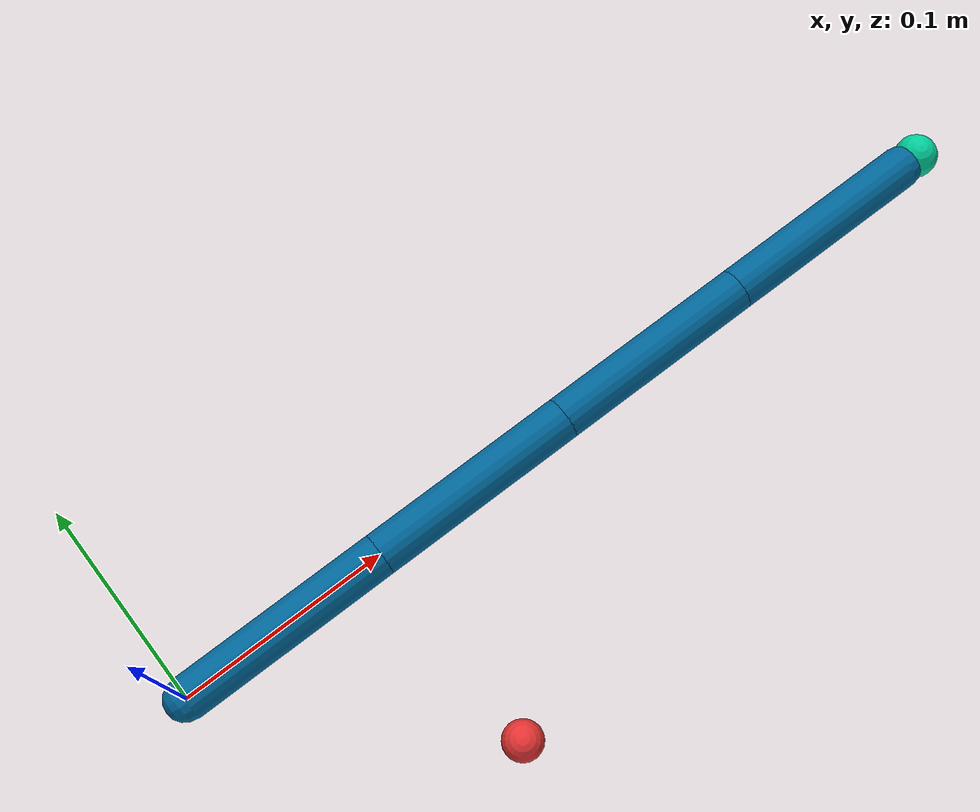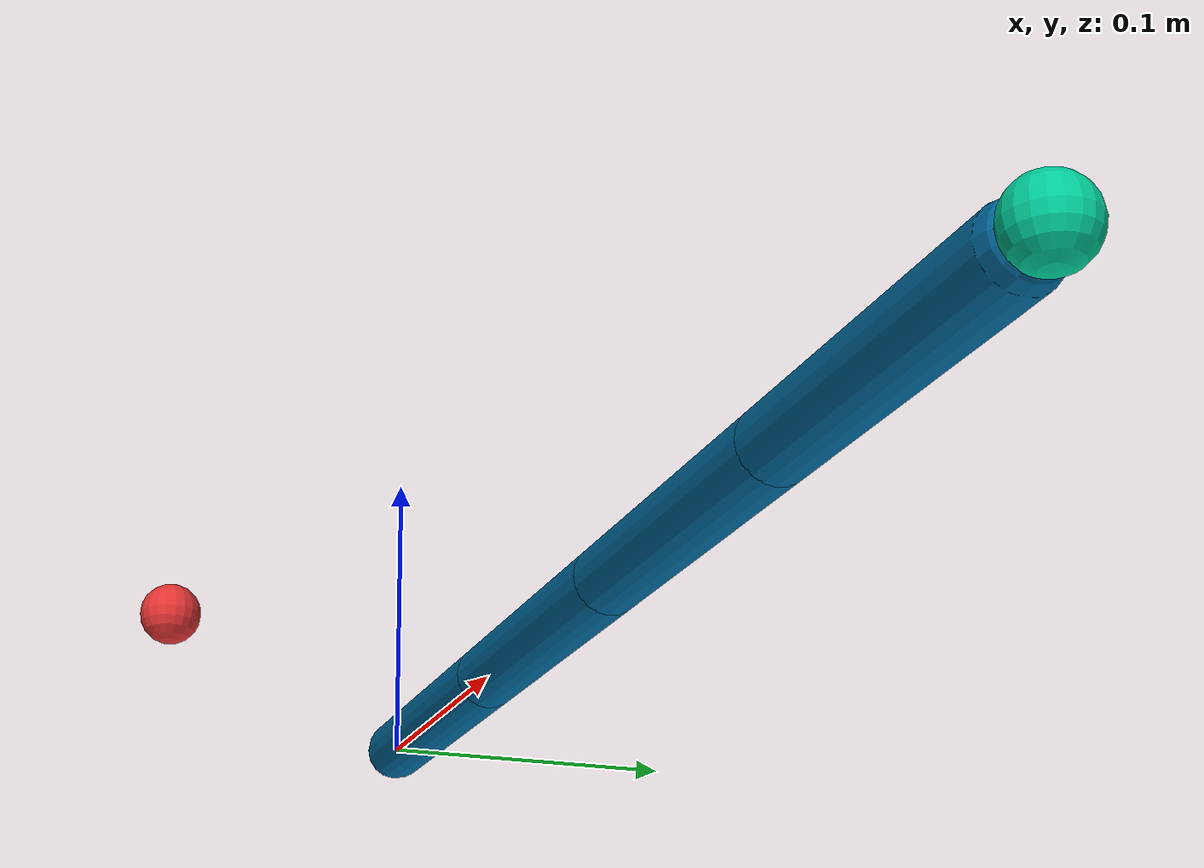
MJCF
<mujoco model="multilink_reacher">
  <compiler angle="radian" inertiafromgeom="true"/>
  <default>
    <joint armature="1" damping="10" limited="true"/>
    <geom contype="0" friction="1 0.1 0.1" rgba="0.7 0.7 0 1"/>
  </default>
  <option gravity="0 0 0" integrator="RK4" timestep="0.01"/>
  <worldbody>
    <body name="link_0" pos="0 0 0">
      <joint limited="false" name="link_0_ball" pos="0 0 0" type="ball"/>
      <geom fromto="0 0 0 0.1 0 0" name="link_0_geom" rgba="0.0 0.4 0.6 1" size=".01" type="capsule"/>
      <body name="link_1" pos="0.10 0 0">
        <joint limited="false" name="link_1_ball" pos="0 0 0" type="ball"/>
        <geom fromto="0 0 0 0.1 0 0" name="link_1_geom" rgba="0.0 0.4 0.6 1" size=".01" type="capsule"/>
        <body name="link_2" pos="0.10 0 0">
          <joint limited="false" name="link_2_ball" pos="0 0 0" type="ball"/>
          <geom fromto="0 0 0 0.1 0 0" name="link_2_geom" rgba="0.0 0.4 0.6 1" size=".01" type="capsule"/>
          <body name="link_3" pos="0.10 0 0">
            <joint limited="false" name="link_3_ball" pos="0 0 0" type="ball"/>
            <geom fromto="0 0 0 0.1 0 0" name="link_3_geom" rgba="0.0 0.4 0.6 1" size=".01" type="capsule"/>
            <body name="fingertip" pos="0.11 0 0">
              <geom contype="0" name="fingertip" pos="0 0 0" rgba="0.0 0.8 0.6 1" size=".01" type="sphere"/>
            </body>
          </body>
        </body>
      </body>
    </body>
    <body name="target" pos="0.1 -0.1 0.01">
      <joint armature="0" axis="1 0 0" damping="0" limited="true" name="target_x" pos="0 0 0" range="-.27 .27" ref="-.1" stiffness="0" type="slide"/>
      <joint armature="0" axis="0 1 0" damping="0" limited="true" name="target_y" pos="0 0 0" range="-.27 .27" ref="-.1" stiffness="0" type="slide"/>
      <joint armature="0" axis="0 0 1" damping="0" limited="true" name="target_z" pos="0 0 0" range="-.27 .27" ref="-.1" stiffness="0" type="slide"/>
      <geom conaffinity="0" contype="0" name="target" pos="0 0 0" rgba="0.9 0.2 0.2 1" size=".009" type="sphere"/>
    </body>
  </worldbody>
  <actuator>
    <motor ctrllimited="true" ctrlrange="-1.0 1.0" gear="200 0 0" joint="link_0_ball"/>
    <motor ctrllimited="true" ctrlrange="-1.0 1.0" gear="0 200 0" joint="link_0_ball"/>
    <motor ctrllimited="true" ctrlrange="-1.0 1.0" gear="0 0 200" joint="link_0_ball"/>
    <motor ctrllimited="true" ctrlrange="-1.0 1.0" gear="200 0 0" joint="link_1_ball"/>
    <motor ctrllimited="true" ctrlrange="-1.0 1.0" gear="0 200 0" joint="link_1_ball"/>
    <motor ctrllimited="true" ctrlrange="-1.0 1.0" gear="0 0 200" joint="link_1_ball"/>
    <motor ctrllimited="true" ctrlrange="-1.0 1.0" gear="200 0 0" joint="link_2_ball"/>
    <motor ctrllimited="true" ctrlrange="-1.0 1.0" gear="0 200 0" joint="link_2_ball"/>
    <motor ctrllimited="true" ctrlrange="-1.0 1.0" gear="0 0 200" joint="link_2_ball"/>
    <motor ctrllimited="true" ctrlrange="-1.0 1.0" gear="200 0 0" joint="link_3_ball"/>
    <motor ctrllimited="true" ctrlrange="-1.0 1.0" gear="0 200 0" joint="link_3_ball"/>
    <motor ctrllimited="true" ctrlrange="-1.0 1.0" gear="0 0 200" joint="link_3_ball"/>
  </actuator>
</mujoco>
